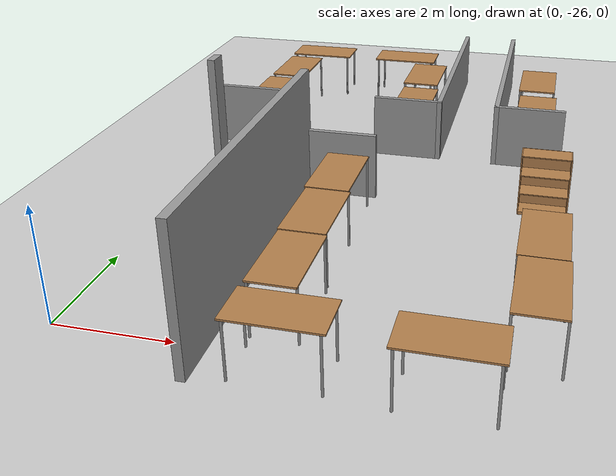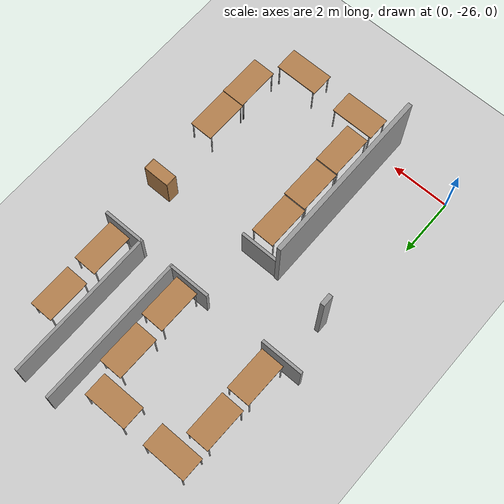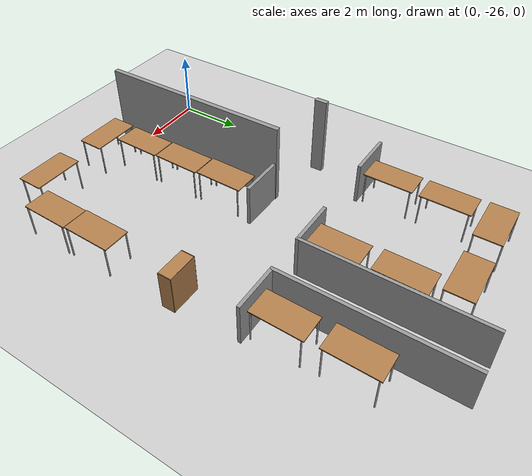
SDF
<sdf version="1.7">
 <world name="default">
  <model name="ground_plane">
   <static>1</static>
   <link name="link">
    <collision name="collision">
     <geometry><plane><normal>0 0 1</normal><size>100 100</size></plane></geometry>
     <surface>
      <contact><collide_bitmask>65535</collide_bitmask></contact>
      <friction><ode><mu>100</mu><mu2>50</mu2></ode></friction>
     </surface>
    </collision>
    <visual name="visual">
     <cast_shadows>0</cast_shadows>
     <geometry><plane><normal>0 0 1</normal><size>100 100</size></plane></geometry>
     <material>
      <script><uri>file://media/materials/scripts/gazebo.material</uri><name>Gazebo/Grey</name></script>
     </material>
    </visual>
   </link>
  </model>
  <model name="XXXXX_office_centered">
   <pose>8.46852 -9.33941 0 0 -0 0</pose>
   <link name="Wall_145">
    <collision name="Wall_145_Collision">
     <geometry><box><size>5.20019 0.1 1.3</size></box></geometry>
     <pose>0 0 0.65 0 -0 0</pose>
    </collision>
    <visual name="Wall_145_Visual">
     <pose>0 0 0.65 0 -0 0</pose>
     <geometry><box><size>5.20019 0.1 1.3</size></box></geometry>
     <material>
      <script><uri>file://media/materials/scripts/gazebo.material</uri><name>Gazebo/Grey</name></script>
      <ambient>1 1 1 1</ambient>
     </material>
     <meta><layer>0</layer></meta>
    </visual>
    <pose>-2.54973 -6.76685 0 0 -0 1.5708</pose>
   </link>
   <link name="Wall_153">
    <collision name="Wall_153_Collision">
     <geometry><box><size>1.4502 0.1 1.3</size></box></geometry>
     <pose>0 0 0.65 0 -0 0</pose>
    </collision>
    <visual name="Wall_153_Visual">
     <pose>0 0 0.65 0 -0 0</pose>
     <geometry><box><size>1.4502 0.1 1.3</size></box></geometry>
     <material>
      <script><uri>file://media/materials/scripts/gazebo.material</uri><name>Gazebo/Grey</name></script>
      <ambient>1 1 1 1</ambient>
     </material>
     <meta><layer>0</layer></meta>
    </visual>
    <pose>-1.87473 -9.31685 0 0 -0 0</pose>
   </link>
   <link name="Wall_166">
    <collision name="Wall_166_Collision">
     <geometry><box><size>5.20019 0.1 1.3</size></box></geometry>
     <pose>0 0 0.65 0 -0 0</pose>
    </collision>
    <visual name="Wall_166_Visual">
     <pose>0 0 0.65 0 -0 0</pose>
     <geometry><box><size>5.20019 0.1 1.3</size></box></geometry>
     <material>
      <script><uri>file://media/materials/scripts/gazebo.material</uri><name>Gazebo/Grey</name></script>
      <ambient>1 1 1 1</ambient>
     </material>
     <meta><layer>0</layer></meta>
    </visual>
    <pose>-3.75173 -6.76685 0 0 -0 1.5708</pose>
   </link>
   <link name="Wall_174">
    <collision name="Wall_174_Collision">
     <geometry><box><size>1.44958 0.1 1.3</size></box></geometry>
     <pose>0 0 0.65 0 -0 0</pose>
    </collision>
    <visual name="Wall_174_Visual">
     <pose>0 0 0.65 0 -0 0</pose>
     <geometry><box><size>1.44958 0.1 1.3</size></box></geometry>
     <material>
      <script><uri>file://media/materials/scripts/gazebo.material</uri><name>Gazebo/Grey</name></script>
      <ambient>1 1 1 1</ambient>
     </material>
     <meta><layer>0</layer></meta>
    </visual>
    <pose>-7.93773 -9.33585 0 0 -0 0</pose>
   </link>
   <link name="Wall_176">
    <collision name="Wall_176_Collision">
     <geometry><box><size>1.45018 0.1 1.3</size></box></geometry>
     <pose>0 0 0.65 0 -0 0</pose>
    </collision>
    <visual name="Wall_176_Visual">
     <pose>0 0 0.65 0 -0 0</pose>
     <geometry><box><size>1.45018 0.1 1.3</size></box></geometry>
     <material>
      <script><uri>file://media/materials/scripts/gazebo.material</uri><name>Gazebo/Grey</name></script>
      <ambient>1 1 1 1</ambient>
     </material>
     <meta><layer>0</layer></meta>
    </visual>
    <pose>-4.42673 -9.31685 0 0 -0 3.14159</pose>
   </link>
   <link name="Wall_183">
    <collision name="Wall_183_Collision">
     <geometry><box><size>1.44998 0.1 1.3</size></box></geometry>
     <pose>0 0 0.65 0 -0 0</pose>
    </collision>
    <visual name="Wall_183_Visual">
     <pose>0 0 0.65 0 -0 0</pose>
     <geometry><box><size>1.44998 0.1 1.3</size></box></geometry>
     <material>
      <script><uri>file://media/materials/scripts/gazebo.material</uri><name>Gazebo/Grey</name></script>
      <ambient>1 1 1 1</ambient>
     </material>
     <meta><layer>0</layer></meta>
    </visual>
    <pose>-5.37673 -11.4379 0 0 -0 0</pose>
   </link>
   <link name="Wall_19">
    <collision name="Wall_19_Collision">
     <geometry><box><size>6.06274 0.15 2.5</size></box></geometry>
     <pose>0 0 1.25 0 -0 0</pose>
    </collision>
    <visual name="Wall_19_Visual">
     <pose>0 0 1.25 0 -0 0</pose>
     <geometry><box><size>6.06274 0.15 2.5</size></box></geometry>
     <material>
      <script><uri>file://media/materials/scripts/gazebo.material</uri><name>Gazebo/Grey</name></script>
      <ambient>1 1 1 1</ambient>
     </material>
     <meta><layer>0</layer></meta>
    </visual>
    <pose>-6.03836 -14.394 0 0 -0 -1.56628</pose>
   </link>
   <link name="Wall_79">
    <collision name="Wall_79_Collision">
     <geometry><box><size>0.381532 0.15 2.5</size></box></geometry>
     <pose>0 0 1.25 0 -0 0</pose>
    </collision>
    <visual name="Wall_79_Visual">
     <pose>0 0 1.25 0 -0 0</pose>
     <geometry><box><size>0.381532 0.15 2.5</size></box></geometry>
     <material>
      <script><uri>file://media/materials/scripts/gazebo.material</uri><name>Gazebo/Grey</name></script>
      <ambient>1 1 1 1</ambient>
     </material>
     <meta><layer>0</layer></meta>
    </visual>
    <pose>-8.00051 -11.085 0 0 -0 -1.55651</pose>
   </link>
   <static>1</static>
  </model>
  <model name="table_4">
   <static>1</static>
   <link name="link">
    <collision name="surface">
     <pose>0 0 1 0 -0 0</pose>
     <geometry><box><size>1.5 0.8 0.03</size></box></geometry>
     <surface><friction><ode><mu>0.6</mu><mu2>0.6</mu2></ode></friction></surface>
    </collision>
    <visual name="visual1">
     <pose>0 0 1 0 -0 0</pose>
     <geometry><box><size>1.5 0.8 0.03</size></box></geometry>
     <material>
      <script><uri>file://media/materials/scripts/gazebo.material</uri><name>Gazebo/Wood</name></script>
     </material>
    </visual>
    <collision name="collision_front_left_leg">
     <pose>0.68 0.38 0.5 0 -0 0</pose>
     <geometry><cylinder><radius>0.02</radius><length>1</length></cylinder></geometry>
    </collision>
    <visual name="visual_front_left_leg">
     <pose>0.68 0.38 0.5 0 -0 0</pose>
     <geometry><cylinder><radius>0.02</radius><length>1</length></cylinder></geometry>
     <material>
      <script><uri>file://media/materials/scripts/gazebo.material</uri><name>Gazebo/Grey</name></script>
     </material>
    </visual>
    <collision name="collision_front_right_leg">
     <pose>0.68 -0.38 0.5 0 -0 0</pose>
     <geometry><cylinder><radius>0.02</radius><length>1</length></cylinder></geometry>
    </collision>
    <visual name="visual_front_right_leg">
     <pose>0.68 -0.38 0.5 0 -0 0</pose>
     <geometry><cylinder><radius>0.02</radius><length>1</length></cylinder></geometry>
     <material>
      <script><uri>file://media/materials/scripts/gazebo.material</uri><name>Gazebo/Grey</name></script>
     </material>
    </visual>
    <collision name="collision_back_right_leg">
     <pose>-0.68 -0.38 0.5 0 -0 0</pose>
     <geometry><cylinder><radius>0.02</radius><length>1</length></cylinder></geometry>
    </collision>
    <visual name="visual_back_right_leg">
     <pose>-0.68 -0.38 0.5 0 -0 0</pose>
     <geometry><cylinder><radius>0.02</radius><length>1</length></cylinder></geometry>
     <material>
      <script><uri>file://media/materials/scripts/gazebo.material</uri><name>Gazebo/Grey</name></script>
     </material>
    </visual>
    <collision name="collision_back_left_leg">
     <pose>-0.68 0.38 0.5 0 -0 0</pose>
     <geometry><cylinder><radius>0.02</radius><length>1</length></cylinder></geometry>
    </collision>
    <visual name="visual_back_left_leg">
     <pose>-0.68 0.38 0.5 0 -0 0</pose>
     <geometry><cylinder><radius>0.02</radius><length>1</length></cylinder></geometry>
     <material>
      <script><uri>file://media/materials/scripts/gazebo.material</uri><name>Gazebo/Grey</name></script>
     </material>
    </visual>
   </link>
   <pose>1.10768 -14.7151 0 0 -0 0</pose>
  </model>
  <model name="table_5">
   <static>1</static>
   <link name="link">
    <collision name="surface">
     <pose>0 0 1 0 -0 0</pose>
     <geometry><box><size>1.5 0.8 0.03</size></box></geometry>
     <surface><friction><ode><mu>0.6</mu><mu2>0.6</mu2></ode></friction></surface>
    </collision>
    <visual name="visual1">
     <pose>0 0 1 0 -0 0</pose>
     <geometry><box><size>1.5 0.8 0.03</size></box></geometry>
     <material>
      <script><uri>file://media/materials/scripts/gazebo.material</uri><name>Gazebo/Wood</name></script>
     </material>
    </visual>
    <collision name="collision_front_left_leg">
     <pose>0.68 0.38 0.5 0 -0 0</pose>
     <geometry><cylinder><radius>0.02</radius><length>1</length></cylinder></geometry>
    </collision>
    <visual name="visual_front_left_leg">
     <pose>0.68 0.38 0.5 0 -0 0</pose>
     <geometry><cylinder><radius>0.02</radius><length>1</length></cylinder></geometry>
     <material>
      <script><uri>file://media/materials/scripts/gazebo.material</uri><name>Gazebo/Grey</name></script>
     </material>
    </visual>
    <collision name="collision_front_right_leg">
     <pose>0.68 -0.38 0.5 0 -0 0</pose>
     <geometry><cylinder><radius>0.02</radius><length>1</length></cylinder></geometry>
    </collision>
    <visual name="visual_front_right_leg">
     <pose>0.68 -0.38 0.5 0 -0 0</pose>
     <geometry><cylinder><radius>0.02</radius><length>1</length></cylinder></geometry>
     <material>
      <script><uri>file://media/materials/scripts/gazebo.material</uri><name>Gazebo/Grey</name></script>
     </material>
    </visual>
    <collision name="collision_back_right_leg">
     <pose>-0.68 -0.38 0.5 0 -0 0</pose>
     <geometry><cylinder><radius>0.02</radius><length>1</length></cylinder></geometry>
    </collision>
    <visual name="visual_back_right_leg">
     <pose>-0.68 -0.38 0.5 0 -0 0</pose>
     <geometry><cylinder><radius>0.02</radius><length>1</length></cylinder></geometry>
     <material>
      <script><uri>file://media/materials/scripts/gazebo.material</uri><name>Gazebo/Grey</name></script>
     </material>
    </visual>
    <collision name="collision_back_left_leg">
     <pose>-0.68 0.38 0.5 0 -0 0</pose>
     <geometry><cylinder><radius>0.02</radius><length>1</length></cylinder></geometry>
    </collision>
    <visual name="visual_back_left_leg">
     <pose>-0.68 0.38 0.5 0 -0 0</pose>
     <geometry><cylinder><radius>0.02</radius><length>1</length></cylinder></geometry>
     <material>
      <script><uri>file://media/materials/scripts/gazebo.material</uri><name>Gazebo/Grey</name></script>
     </material>
    </visual>
   </link>
   <pose>3.29963 -14.6952 0 0 -0 0</pose>
  </model>
  <model name="table_12">
   <static>1</static>
   <link name="link">
    <collision name="surface">
     <pose>0 0 1 0 -0 0</pose>
     <geometry><box><size>1.5 0.8 0.03</size></box></geometry>
     <surface><friction><ode><mu>0.6</mu><mu2>0.6</mu2></ode></friction></surface>
    </collision>
    <visual name="visual1">
     <pose>0 0 1 0 -0 0</pose>
     <geometry><box><size>1.5 0.8 0.03</size></box></geometry>
     <material>
      <script><uri>file://media/materials/scripts/gazebo.material</uri><name>Gazebo/Wood</name></script>
     </material>
    </visual>
    <collision name="collision_front_left_leg">
     <pose>0.68 0.38 0.5 0 -0 0</pose>
     <geometry><cylinder><radius>0.02</radius><length>1</length></cylinder></geometry>
    </collision>
    <visual name="visual_front_left_leg">
     <pose>0.68 0.38 0.5 0 -0 0</pose>
     <geometry><cylinder><radius>0.02</radius><length>1</length></cylinder></geometry>
     <material>
      <script><uri>file://media/materials/scripts/gazebo.material</uri><name>Gazebo/Grey</name></script>
     </material>
    </visual>
    <collision name="collision_front_right_leg">
     <pose>0.68 -0.38 0.5 0 -0 0</pose>
     <geometry><cylinder><radius>0.02</radius><length>1</length></cylinder></geometry>
    </collision>
    <visual name="visual_front_right_leg">
     <pose>0.68 -0.38 0.5 0 -0 0</pose>
     <geometry><cylinder><radius>0.02</radius><length>1</length></cylinder></geometry>
     <material>
      <script><uri>file://media/materials/scripts/gazebo.material</uri><name>Gazebo/Grey</name></script>
     </material>
    </visual>
    <collision name="collision_back_right_leg">
     <pose>-0.68 -0.38 0.5 0 -0 0</pose>
     <geometry><cylinder><radius>0.02</radius><length>1</length></cylinder></geometry>
    </collision>
    <visual name="visual_back_right_leg">
     <pose>-0.68 -0.38 0.5 0 -0 0</pose>
     <geometry><cylinder><radius>0.02</radius><length>1</length></cylinder></geometry>
     <material>
      <script><uri>file://media/materials/scripts/gazebo.material</uri><name>Gazebo/Grey</name></script>
     </material>
    </visual>
    <collision name="collision_back_left_leg">
     <pose>-0.68 0.38 0.5 0 -0 0</pose>
     <geometry><cylinder><radius>0.02</radius><length>1</length></cylinder></geometry>
    </collision>
    <visual name="visual_back_left_leg">
     <pose>-0.68 0.38 0.5 0 -0 0</pose>
     <geometry><cylinder><radius>0.02</radius><length>1</length></cylinder></geometry>
     <material>
      <script><uri>file://media/materials/scripts/gazebo.material</uri><name>Gazebo/Grey</name></script>
     </material>
    </visual>
   </link>
   <pose>3.71612 -26.2266 0 0 -0 0</pose>
  </model>
  <model name="table_13">
   <static>1</static>
   <link name="link">
    <collision name="surface">
     <pose>0 0 1 0 -0 0</pose>
     <geometry><box><size>1.5 0.8 0.03</size></box></geometry>
     <surface><friction><ode><mu>0.6</mu><mu2>0.6</mu2></ode></friction></surface>
    </collision>
    <visual name="visual1">
     <pose>0 0 1 0 -0 0</pose>
     <geometry><box><size>1.5 0.8 0.03</size></box></geometry>
     <material>
      <script><uri>file://media/materials/scripts/gazebo.material</uri><name>Gazebo/Wood</name></script>
     </material>
    </visual>
    <collision name="collision_front_left_leg">
     <pose>0.68 0.38 0.5 0 -0 0</pose>
     <geometry><cylinder><radius>0.02</radius><length>1</length></cylinder></geometry>
    </collision>
    <visual name="visual_front_left_leg">
     <pose>0.68 0.38 0.5 0 -0 0</pose>
     <geometry><cylinder><radius>0.02</radius><length>1</length></cylinder></geometry>
     <material>
      <script><uri>file://media/materials/scripts/gazebo.material</uri><name>Gazebo/Grey</name></script>
     </material>
    </visual>
    <collision name="collision_front_right_leg">
     <pose>0.68 -0.38 0.5 0 -0 0</pose>
     <geometry><cylinder><radius>0.02</radius><length>1</length></cylinder></geometry>
    </collision>
    <visual name="visual_front_right_leg">
     <pose>0.68 -0.38 0.5 0 -0 0</pose>
     <geometry><cylinder><radius>0.02</radius><length>1</length></cylinder></geometry>
     <material>
      <script><uri>file://media/materials/scripts/gazebo.material</uri><name>Gazebo/Grey</name></script>
     </material>
    </visual>
    <collision name="collision_back_right_leg">
     <pose>-0.68 -0.38 0.5 0 -0 0</pose>
     <geometry><cylinder><radius>0.02</radius><length>1</length></cylinder></geometry>
    </collision>
    <visual name="visual_back_right_leg">
     <pose>-0.68 -0.38 0.5 0 -0 0</pose>
     <geometry><cylinder><radius>0.02</radius><length>1</length></cylinder></geometry>
     <material>
      <script><uri>file://media/materials/scripts/gazebo.material</uri><name>Gazebo/Grey</name></script>
     </material>
    </visual>
    <collision name="collision_back_left_leg">
     <pose>-0.68 0.38 0.5 0 -0 0</pose>
     <geometry><cylinder><radius>0.02</radius><length>1</length></cylinder></geometry>
    </collision>
    <visual name="visual_back_left_leg">
     <pose>-0.68 0.38 0.5 0 -0 0</pose>
     <geometry><cylinder><radius>0.02</radius><length>1</length></cylinder></geometry>
     <material>
      <script><uri>file://media/materials/scripts/gazebo.material</uri><name>Gazebo/Grey</name></script>
     </material>
    </visual>
   </link>
   <pose>6.01356 -26.2944 0 0 -0 0</pose>
  </model>
  <model name="table_26_clone_16">
   <static>1</static>
   <link name="link">
    <collision name="surface">
     <pose>0 0 1 0 -0 0</pose>
     <geometry><box><size>1.5 0.8 0.03</size></box></geometry>
     <surface><friction><ode><mu>0.6</mu><mu2>0.6</mu2></ode></friction></surface>
    </collision>
    <visual name="visual1">
     <pose>0 0 1 0 -0 0</pose>
     <geometry><box><size>1.5 0.8 0.03</size></box></geometry>
     <material>
      <script><uri>file://media/materials/scripts/gazebo.material</uri><name>Gazebo/Wood</name></script>
     </material>
    </visual>
    <collision name="collision_front_left_leg">
     <pose>0.68 0.38 0.5 0 -0 0</pose>
     <geometry><cylinder><radius>0.02</radius><length>1</length></cylinder></geometry>
    </collision>
    <visual name="visual_front_left_leg">
     <pose>0.68 0.38 0.5 0 -0 0</pose>
     <geometry><cylinder><radius>0.02</radius><length>1</length></cylinder></geometry>
     <material>
      <script><uri>file://media/materials/scripts/gazebo.material</uri><name>Gazebo/Grey</name></script>
     </material>
    </visual>
    <collision name="collision_front_right_leg">
     <pose>0.68 -0.38 0.5 0 -0 0</pose>
     <geometry><cylinder><radius>0.02</radius><length>1</length></cylinder></geometry>
    </collision>
    <visual name="visual_front_right_leg">
     <pose>0.68 -0.38 0.5 0 -0 0</pose>
     <geometry><cylinder><radius>0.02</radius><length>1</length></cylinder></geometry>
     <material>
      <script><uri>file://media/materials/scripts/gazebo.material</uri><name>Gazebo/Grey</name></script>
     </material>
    </visual>
    <collision name="collision_back_right_leg">
     <pose>-0.68 -0.38 0.5 0 -0 0</pose>
     <geometry><cylinder><radius>0.02</radius><length>1</length></cylinder></geometry>
    </collision>
    <visual name="visual_back_right_leg">
     <pose>-0.68 -0.38 0.5 0 -0 0</pose>
     <geometry><cylinder><radius>0.02</radius><length>1</length></cylinder></geometry>
     <material>
      <script><uri>file://media/materials/scripts/gazebo.material</uri><name>Gazebo/Grey</name></script>
     </material>
    </visual>
    <collision name="collision_back_left_leg">
     <pose>-0.68 0.38 0.5 0 -0 0</pose>
     <geometry><cylinder><radius>0.02</radius><length>1</length></cylinder></geometry>
    </collision>
    <visual name="visual_back_left_leg">
     <pose>-0.68 0.38 0.5 0 -0 0</pose>
     <geometry><cylinder><radius>0.02</radius><length>1</length></cylinder></geometry>
     <material>
      <script><uri>file://media/materials/scripts/gazebo.material</uri><name>Gazebo/Grey</name></script>
     </material>
    </visual>
   </link>
   <pose>6.68534 -15.96 0 0 0 -1.57974</pose>
  </model>
  <model name="table_26_clone_17">
   <static>1</static>
   <link name="link">
    <collision name="surface">
     <pose>0 0 1 0 -0 0</pose>
     <geometry><box><size>1.5 0.8 0.03</size></box></geometry>
     <surface><friction><ode><mu>0.6</mu><mu2>0.6</mu2></ode></friction></surface>
    </collision>
    <visual name="visual1">
     <pose>0 0 1 0 -0 0</pose>
     <geometry><box><size>1.5 0.8 0.03</size></box></geometry>
     <material>
      <script><uri>file://media/materials/scripts/gazebo.material</uri><name>Gazebo/Wood</name></script>
     </material>
    </visual>
    <collision name="collision_front_left_leg">
     <pose>0.68 0.38 0.5 0 -0 0</pose>
     <geometry><cylinder><radius>0.02</radius><length>1</length></cylinder></geometry>
    </collision>
    <visual name="visual_front_left_leg">
     <pose>0.68 0.38 0.5 0 -0 0</pose>
     <geometry><cylinder><radius>0.02</radius><length>1</length></cylinder></geometry>
     <material>
      <script><uri>file://media/materials/scripts/gazebo.material</uri><name>Gazebo/Grey</name></script>
     </material>
    </visual>
    <collision name="collision_front_right_leg">
     <pose>0.68 -0.38 0.5 0 -0 0</pose>
     <geometry><cylinder><radius>0.02</radius><length>1</length></cylinder></geometry>
    </collision>
    <visual name="visual_front_right_leg">
     <pose>0.68 -0.38 0.5 0 -0 0</pose>
     <geometry><cylinder><radius>0.02</radius><length>1</length></cylinder></geometry>
     <material>
      <script><uri>file://media/materials/scripts/gazebo.material</uri><name>Gazebo/Grey</name></script>
     </material>
    </visual>
    <collision name="collision_back_right_leg">
     <pose>-0.68 -0.38 0.5 0 -0 0</pose>
     <geometry><cylinder><radius>0.02</radius><length>1</length></cylinder></geometry>
    </collision>
    <visual name="visual_back_right_leg">
     <pose>-0.68 -0.38 0.5 0 -0 0</pose>
     <geometry><cylinder><radius>0.02</radius><length>1</length></cylinder></geometry>
     <material>
      <script><uri>file://media/materials/scripts/gazebo.material</uri><name>Gazebo/Grey</name></script>
     </material>
    </visual>
    <collision name="collision_back_left_leg">
     <pose>-0.68 0.38 0.5 0 -0 0</pose>
     <geometry><cylinder><radius>0.02</radius><length>1</length></cylinder></geometry>
    </collision>
    <visual name="visual_back_left_leg">
     <pose>-0.68 0.38 0.5 0 -0 0</pose>
     <geometry><cylinder><radius>0.02</radius><length>1</length></cylinder></geometry>
     <material>
      <script><uri>file://media/materials/scripts/gazebo.material</uri><name>Gazebo/Grey</name></script>
     </material>
    </visual>
   </link>
   <pose>6.71927 -17.8047 0 0 0 -1.57974</pose>
  </model>
  <model name="table_26_clone_18">
   <static>1</static>
   <link name="link">
    <collision name="surface">
     <pose>0 0 1 0 -0 0</pose>
     <geometry><box><size>1.5 0.8 0.03</size></box></geometry>
     <surface><friction><ode><mu>0.6</mu><mu2>0.6</mu2></ode></friction></surface>
    </collision>
    <visual name="visual1">
     <pose>0 0 1 0 -0 0</pose>
     <geometry><box><size>1.5 0.8 0.03</size></box></geometry>
     <material>
      <script><uri>file://media/materials/scripts/gazebo.material</uri><name>Gazebo/Wood</name></script>
     </material>
    </visual>
    <collision name="collision_front_left_leg">
     <pose>0.68 0.38 0.5 0 -0 0</pose>
     <geometry><cylinder><radius>0.02</radius><length>1</length></cylinder></geometry>
    </collision>
    <visual name="visual_front_left_leg">
     <pose>0.68 0.38 0.5 0 -0 0</pose>
     <geometry><cylinder><radius>0.02</radius><length>1</length></cylinder></geometry>
     <material>
      <script><uri>file://media/materials/scripts/gazebo.material</uri><name>Gazebo/Grey</name></script>
     </material>
    </visual>
    <collision name="collision_front_right_leg">
     <pose>0.68 -0.38 0.5 0 -0 0</pose>
     <geometry><cylinder><radius>0.02</radius><length>1</length></cylinder></geometry>
    </collision>
    <visual name="visual_front_right_leg">
     <pose>0.68 -0.38 0.5 0 -0 0</pose>
     <geometry><cylinder><radius>0.02</radius><length>1</length></cylinder></geometry>
     <material>
      <script><uri>file://media/materials/scripts/gazebo.material</uri><name>Gazebo/Grey</name></script>
     </material>
    </visual>
    <collision name="collision_back_right_leg">
     <pose>-0.68 -0.38 0.5 0 -0 0</pose>
     <geometry><cylinder><radius>0.02</radius><length>1</length></cylinder></geometry>
    </collision>
    <visual name="visual_back_right_leg">
     <pose>-0.68 -0.38 0.5 0 -0 0</pose>
     <geometry><cylinder><radius>0.02</radius><length>1</length></cylinder></geometry>
     <material>
      <script><uri>file://media/materials/scripts/gazebo.material</uri><name>Gazebo/Grey</name></script>
     </material>
    </visual>
    <collision name="collision_back_left_leg">
     <pose>-0.68 0.38 0.5 0 -0 0</pose>
     <geometry><cylinder><radius>0.02</radius><length>1</length></cylinder></geometry>
    </collision>
    <visual name="visual_back_left_leg">
     <pose>-0.68 0.38 0.5 0 -0 0</pose>
     <geometry><cylinder><radius>0.02</radius><length>1</length></cylinder></geometry>
     <material>
      <script><uri>file://media/materials/scripts/gazebo.material</uri><name>Gazebo/Grey</name></script>
     </material>
    </visual>
   </link>
   <pose>4.05406 -17.8198 0 0 0 -1.57974</pose>
  </model>
  <model name="table_26_clone_19">
   <static>1</static>
   <link name="link">
    <collision name="surface">
     <pose>0 0 1 0 -0 0</pose>
     <geometry><box><size>1.5 0.8 0.03</size></box></geometry>
     <surface><friction><ode><mu>0.6</mu><mu2>0.6</mu2></ode></friction></surface>
    </collision>
    <visual name="visual1">
     <pose>0 0 1 0 -0 0</pose>
     <geometry><box><size>1.5 0.8 0.03</size></box></geometry>
     <material>
      <script><uri>file://media/materials/scripts/gazebo.material</uri><name>Gazebo/Wood</name></script>
     </material>
    </visual>
    <collision name="collision_front_left_leg">
     <pose>0.68 0.38 0.5 0 -0 0</pose>
     <geometry><cylinder><radius>0.02</radius><length>1</length></cylinder></geometry>
    </collision>
    <visual name="visual_front_left_leg">
     <pose>0.68 0.38 0.5 0 -0 0</pose>
     <geometry><cylinder><radius>0.02</radius><length>1</length></cylinder></geometry>
     <material>
      <script><uri>file://media/materials/scripts/gazebo.material</uri><name>Gazebo/Grey</name></script>
     </material>
    </visual>
    <collision name="collision_front_right_leg">
     <pose>0.68 -0.38 0.5 0 -0 0</pose>
     <geometry><cylinder><radius>0.02</radius><length>1</length></cylinder></geometry>
    </collision>
    <visual name="visual_front_right_leg">
     <pose>0.68 -0.38 0.5 0 -0 0</pose>
     <geometry><cylinder><radius>0.02</radius><length>1</length></cylinder></geometry>
     <material>
      <script><uri>file://media/materials/scripts/gazebo.material</uri><name>Gazebo/Grey</name></script>
     </material>
    </visual>
    <collision name="collision_back_right_leg">
     <pose>-0.68 -0.38 0.5 0 -0 0</pose>
     <geometry><cylinder><radius>0.02</radius><length>1</length></cylinder></geometry>
    </collision>
    <visual name="visual_back_right_leg">
     <pose>-0.68 -0.38 0.5 0 -0 0</pose>
     <geometry><cylinder><radius>0.02</radius><length>1</length></cylinder></geometry>
     <material>
      <script><uri>file://media/materials/scripts/gazebo.material</uri><name>Gazebo/Grey</name></script>
     </material>
    </visual>
    <collision name="collision_back_left_leg">
     <pose>-0.68 0.38 0.5 0 -0 0</pose>
     <geometry><cylinder><radius>0.02</radius><length>1</length></cylinder></geometry>
    </collision>
    <visual name="visual_back_left_leg">
     <pose>-0.68 0.38 0.5 0 -0 0</pose>
     <geometry><cylinder><radius>0.02</radius><length>1</length></cylinder></geometry>
     <material>
      <script><uri>file://media/materials/scripts/gazebo.material</uri><name>Gazebo/Grey</name></script>
     </material>
    </visual>
   </link>
   <pose>4.0033 -16.0331 0 0 0 -1.57974</pose>
  </model>
  <model name="table_26_clone_20">
   <static>1</static>
   <link name="link">
    <collision name="surface">
     <pose>0 0 1 0 -0 0</pose>
     <geometry><box><size>1.5 0.8 0.03</size></box></geometry>
     <surface><friction><ode><mu>0.6</mu><mu2>0.6</mu2></ode></friction></surface>
    </collision>
    <visual name="visual1">
     <pose>0 0 1 0 -0 0</pose>
     <geometry><box><size>1.5 0.8 0.03</size></box></geometry>
     <material>
      <script><uri>file://media/materials/scripts/gazebo.material</uri><name>Gazebo/Wood</name></script>
     </material>
    </visual>
    <collision name="collision_front_left_leg">
     <pose>0.68 0.38 0.5 0 -0 0</pose>
     <geometry><cylinder><radius>0.02</radius><length>1</length></cylinder></geometry>
    </collision>
    <visual name="visual_front_left_leg">
     <pose>0.68 0.38 0.5 0 -0 0</pose>
     <geometry><cylinder><radius>0.02</radius><length>1</length></cylinder></geometry>
     <material>
      <script><uri>file://media/materials/scripts/gazebo.material</uri><name>Gazebo/Grey</name></script>
     </material>
    </visual>
    <collision name="collision_front_right_leg">
     <pose>0.68 -0.38 0.5 0 -0 0</pose>
     <geometry><cylinder><radius>0.02</radius><length>1</length></cylinder></geometry>
    </collision>
    <visual name="visual_front_right_leg">
     <pose>0.68 -0.38 0.5 0 -0 0</pose>
     <geometry><cylinder><radius>0.02</radius><length>1</length></cylinder></geometry>
     <material>
      <script><uri>file://media/materials/scripts/gazebo.material</uri><name>Gazebo/Grey</name></script>
     </material>
    </visual>
    <collision name="collision_back_right_leg">
     <pose>-0.68 -0.38 0.5 0 -0 0</pose>
     <geometry><cylinder><radius>0.02</radius><length>1</length></cylinder></geometry>
    </collision>
    <visual name="visual_back_right_leg">
     <pose>-0.68 -0.38 0.5 0 -0 0</pose>
     <geometry><cylinder><radius>0.02</radius><length>1</length></cylinder></geometry>
     <material>
      <script><uri>file://media/materials/scripts/gazebo.material</uri><name>Gazebo/Grey</name></script>
     </material>
    </visual>
    <collision name="collision_back_left_leg">
     <pose>-0.68 0.38 0.5 0 -0 0</pose>
     <geometry><cylinder><radius>0.02</radius><length>1</length></cylinder></geometry>
    </collision>
    <visual name="visual_back_left_leg">
     <pose>-0.68 0.38 0.5 0 -0 0</pose>
     <geometry><cylinder><radius>0.02</radius><length>1</length></cylinder></geometry>
     <material>
      <script><uri>file://media/materials/scripts/gazebo.material</uri><name>Gazebo/Grey</name></script>
     </material>
    </visual>
   </link>
   <pose>0.785889 -16.1027 0 0 0 -1.57974</pose>
  </model>
  <model name="table_26_clone_21">
   <static>1</static>
   <link name="link">
    <collision name="surface">
     <pose>0 0 1 0 -0 0</pose>
     <geometry><box><size>1.5 0.8 0.03</size></box></geometry>
     <surface><friction><ode><mu>0.6</mu><mu2>0.6</mu2></ode></friction></surface>
    </collision>
    <visual name="visual1">
     <pose>0 0 1 0 -0 0</pose>
     <geometry><box><size>1.5 0.8 0.03</size></box></geometry>
     <material>
      <script><uri>file://media/materials/scripts/gazebo.material</uri><name>Gazebo/Wood</name></script>
     </material>
    </visual>
    <collision name="collision_front_left_leg">
     <pose>0.68 0.38 0.5 0 -0 0</pose>
     <geometry><cylinder><radius>0.02</radius><length>1</length></cylinder></geometry>
    </collision>
    <visual name="visual_front_left_leg">
     <pose>0.68 0.38 0.5 0 -0 0</pose>
     <geometry><cylinder><radius>0.02</radius><length>1</length></cylinder></geometry>
     <material>
      <script><uri>file://media/materials/scripts/gazebo.material</uri><name>Gazebo/Grey</name></script>
     </material>
    </visual>
    <collision name="collision_front_right_leg">
     <pose>0.68 -0.38 0.5 0 -0 0</pose>
     <geometry><cylinder><radius>0.02</radius><length>1</length></cylinder></geometry>
    </collision>
    <visual name="visual_front_right_leg">
     <pose>0.68 -0.38 0.5 0 -0 0</pose>
     <geometry><cylinder><radius>0.02</radius><length>1</length></cylinder></geometry>
     <material>
      <script><uri>file://media/materials/scripts/gazebo.material</uri><name>Gazebo/Grey</name></script>
     </material>
    </visual>
    <collision name="collision_back_right_leg">
     <pose>-0.68 -0.38 0.5 0 -0 0</pose>
     <geometry><cylinder><radius>0.02</radius><length>1</length></cylinder></geometry>
    </collision>
    <visual name="visual_back_right_leg">
     <pose>-0.68 -0.38 0.5 0 -0 0</pose>
     <geometry><cylinder><radius>0.02</radius><length>1</length></cylinder></geometry>
     <material>
      <script><uri>file://media/materials/scripts/gazebo.material</uri><name>Gazebo/Grey</name></script>
     </material>
    </visual>
    <collision name="collision_back_left_leg">
     <pose>-0.68 0.38 0.5 0 -0 0</pose>
     <geometry><cylinder><radius>0.02</radius><length>1</length></cylinder></geometry>
    </collision>
    <visual name="visual_back_left_leg">
     <pose>-0.68 0.38 0.5 0 -0 0</pose>
     <geometry><cylinder><radius>0.02</radius><length>1</length></cylinder></geometry>
     <material>
      <script><uri>file://media/materials/scripts/gazebo.material</uri><name>Gazebo/Grey</name></script>
     </material>
    </visual>
   </link>
   <pose>0.765195 -17.7967 0 0 0 -1.57974</pose>
  </model>
  <model name="table_26_clone_26">
   <static>1</static>
   <link name="link">
    <collision name="surface">
     <pose>0 0 1 0 -0 0</pose>
     <geometry><box><size>1.5 0.8 0.03</size></box></geometry>
     <surface><friction><ode><mu>0.6</mu><mu2>0.6</mu2></ode></friction></surface>
    </collision>
    <visual name="visual1">
     <pose>0 0 1 0 -0 0</pose>
     <geometry><box><size>1.5 0.8 0.03</size></box></geometry>
     <material>
      <script><uri>file://media/materials/scripts/gazebo.material</uri><name>Gazebo/Wood</name></script>
     </material>
    </visual>
    <collision name="collision_front_left_leg">
     <pose>0.68 0.38 0.5 0 -0 0</pose>
     <geometry><cylinder><radius>0.02</radius><length>1</length></cylinder></geometry>
    </collision>
    <visual name="visual_front_left_leg">
     <pose>0.68 0.38 0.5 0 -0 0</pose>
     <geometry><cylinder><radius>0.02</radius><length>1</length></cylinder></geometry>
     <material>
      <script><uri>file://media/materials/scripts/gazebo.material</uri><name>Gazebo/Grey</name></script>
     </material>
    </visual>
    <collision name="collision_front_right_leg">
     <pose>0.68 -0.38 0.5 0 -0 0</pose>
     <geometry><cylinder><radius>0.02</radius><length>1</length></cylinder></geometry>
    </collision>
    <visual name="visual_front_right_leg">
     <pose>0.68 -0.38 0.5 0 -0 0</pose>
     <geometry><cylinder><radius>0.02</radius><length>1</length></cylinder></geometry>
     <material>
      <script><uri>file://media/materials/scripts/gazebo.material</uri><name>Gazebo/Grey</name></script>
     </material>
    </visual>
    <collision name="collision_back_right_leg">
     <pose>-0.68 -0.38 0.5 0 -0 0</pose>
     <geometry><cylinder><radius>0.02</radius><length>1</length></cylinder></geometry>
    </collision>
    <visual name="visual_back_right_leg">
     <pose>-0.68 -0.38 0.5 0 -0 0</pose>
     <geometry><cylinder><radius>0.02</radius><length>1</length></cylinder></geometry>
     <material>
      <script><uri>file://media/materials/scripts/gazebo.material</uri><name>Gazebo/Grey</name></script>
     </material>
    </visual>
    <collision name="collision_back_left_leg">
     <pose>-0.68 0.38 0.5 0 -0 0</pose>
     <geometry><cylinder><radius>0.02</radius><length>1</length></cylinder></geometry>
    </collision>
    <visual name="visual_back_left_leg">
     <pose>-0.68 0.38 0.5 0 -0 0</pose>
     <geometry><cylinder><radius>0.02</radius><length>1</length></cylinder></geometry>
     <material>
      <script><uri>file://media/materials/scripts/gazebo.material</uri><name>Gazebo/Grey</name></script>
     </material>
    </visual>
   </link>
   <pose>3.39464 -24.9426 0 0 0 -1.57974</pose>
  </model>
  <model name="table_26_clone_27">
   <static>1</static>
   <link name="link">
    <collision name="surface">
     <pose>0 0 1 0 -0 0</pose>
     <geometry><box><size>1.5 0.8 0.03</size></box></geometry>
     <surface><friction><ode><mu>0.6</mu><mu2>0.6</mu2></ode></friction></surface>
    </collision>
    <visual name="visual1">
     <pose>0 0 1 0 -0 0</pose>
     <geometry><box><size>1.5 0.8 0.03</size></box></geometry>
     <material>
      <script><uri>file://media/materials/scripts/gazebo.material</uri><name>Gazebo/Wood</name></script>
     </material>
    </visual>
    <collision name="collision_front_left_leg">
     <pose>0.68 0.38 0.5 0 -0 0</pose>
     <geometry><cylinder><radius>0.02</radius><length>1</length></cylinder></geometry>
    </collision>
    <visual name="visual_front_left_leg">
     <pose>0.68 0.38 0.5 0 -0 0</pose>
     <geometry><cylinder><radius>0.02</radius><length>1</length></cylinder></geometry>
     <material>
      <script><uri>file://media/materials/scripts/gazebo.material</uri><name>Gazebo/Grey</name></script>
     </material>
    </visual>
    <collision name="collision_front_right_leg">
     <pose>0.68 -0.38 0.5 0 -0 0</pose>
     <geometry><cylinder><radius>0.02</radius><length>1</length></cylinder></geometry>
    </collision>
    <visual name="visual_front_right_leg">
     <pose>0.68 -0.38 0.5 0 -0 0</pose>
     <geometry><cylinder><radius>0.02</radius><length>1</length></cylinder></geometry>
     <material>
      <script><uri>file://media/materials/scripts/gazebo.material</uri><name>Gazebo/Grey</name></script>
     </material>
    </visual>
    <collision name="collision_back_right_leg">
     <pose>-0.68 -0.38 0.5 0 -0 0</pose>
     <geometry><cylinder><radius>0.02</radius><length>1</length></cylinder></geometry>
    </collision>
    <visual name="visual_back_right_leg">
     <pose>-0.68 -0.38 0.5 0 -0 0</pose>
     <geometry><cylinder><radius>0.02</radius><length>1</length></cylinder></geometry>
     <material>
      <script><uri>file://media/materials/scripts/gazebo.material</uri><name>Gazebo/Grey</name></script>
     </material>
    </visual>
    <collision name="collision_back_left_leg">
     <pose>-0.68 0.38 0.5 0 -0 0</pose>
     <geometry><cylinder><radius>0.02</radius><length>1</length></cylinder></geometry>
    </collision>
    <visual name="visual_back_left_leg">
     <pose>-0.68 0.38 0.5 0 -0 0</pose>
     <geometry><cylinder><radius>0.02</radius><length>1</length></cylinder></geometry>
     <material>
      <script><uri>file://media/materials/scripts/gazebo.material</uri><name>Gazebo/Grey</name></script>
     </material>
    </visual>
   </link>
   <pose>3.38039 -23.4145 0 0 0 -1.57974</pose>
  </model>
  <model name="table_26_clone_28">
   <static>1</static>
   <link name="link">
    <collision name="surface">
     <pose>0 0 1 0 -0 0</pose>
     <geometry><box><size>1.5 0.8 0.03</size></box></geometry>
     <surface><friction><ode><mu>0.6</mu><mu2>0.6</mu2></ode></friction></surface>
    </collision>
    <visual name="visual1">
     <pose>0 0 1 0 -0 0</pose>
     <geometry><box><size>1.5 0.8 0.03</size></box></geometry>
     <material>
      <script><uri>file://media/materials/scripts/gazebo.material</uri><name>Gazebo/Wood</name></script>
     </material>
    </visual>
    <collision name="collision_front_left_leg">
     <pose>0.68 0.38 0.5 0 -0 0</pose>
     <geometry><cylinder><radius>0.02</radius><length>1</length></cylinder></geometry>
    </collision>
    <visual name="visual_front_left_leg">
     <pose>0.68 0.38 0.5 0 -0 0</pose>
     <geometry><cylinder><radius>0.02</radius><length>1</length></cylinder></geometry>
     <material>
      <script><uri>file://media/materials/scripts/gazebo.material</uri><name>Gazebo/Grey</name></script>
     </material>
    </visual>
    <collision name="collision_front_right_leg">
     <pose>0.68 -0.38 0.5 0 -0 0</pose>
     <geometry><cylinder><radius>0.02</radius><length>1</length></cylinder></geometry>
    </collision>
    <visual name="visual_front_right_leg">
     <pose>0.68 -0.38 0.5 0 -0 0</pose>
     <geometry><cylinder><radius>0.02</radius><length>1</length></cylinder></geometry>
     <material>
      <script><uri>file://media/materials/scripts/gazebo.material</uri><name>Gazebo/Grey</name></script>
     </material>
    </visual>
    <collision name="collision_back_right_leg">
     <pose>-0.68 -0.38 0.5 0 -0 0</pose>
     <geometry><cylinder><radius>0.02</radius><length>1</length></cylinder></geometry>
    </collision>
    <visual name="visual_back_right_leg">
     <pose>-0.68 -0.38 0.5 0 -0 0</pose>
     <geometry><cylinder><radius>0.02</radius><length>1</length></cylinder></geometry>
     <material>
      <script><uri>file://media/materials/scripts/gazebo.material</uri><name>Gazebo/Grey</name></script>
     </material>
    </visual>
    <collision name="collision_back_left_leg">
     <pose>-0.68 0.38 0.5 0 -0 0</pose>
     <geometry><cylinder><radius>0.02</radius><length>1</length></cylinder></geometry>
    </collision>
    <visual name="visual_back_left_leg">
     <pose>-0.68 0.38 0.5 0 -0 0</pose>
     <geometry><cylinder><radius>0.02</radius><length>1</length></cylinder></geometry>
     <material>
      <script><uri>file://media/materials/scripts/gazebo.material</uri><name>Gazebo/Grey</name></script>
     </material>
    </visual>
   </link>
   <pose>3.35083 -21.8848 0 0 0 -1.57974</pose>
  </model>
  <model name="table_26_clone_30">
   <static>1</static>
   <link name="link">
    <collision name="surface">
     <pose>0 0 1 0 -0 0</pose>
     <geometry><box><size>1.5 0.8 0.03</size></box></geometry>
     <surface><friction><ode><mu>0.6</mu><mu2>0.6</mu2></ode></friction></surface>
    </collision>
    <visual name="visual1">
     <pose>0 0 1 0 -0 0</pose>
     <geometry><box><size>1.5 0.8 0.03</size></box></geometry>
     <material>
      <script><uri>file://media/materials/scripts/gazebo.material</uri><name>Gazebo/Wood</name></script>
     </material>
    </visual>
    <collision name="collision_front_left_leg">
     <pose>0.68 0.38 0.5 0 -0 0</pose>
     <geometry><cylinder><radius>0.02</radius><length>1</length></cylinder></geometry>
    </collision>
    <visual name="visual_front_left_leg">
     <pose>0.68 0.38 0.5 0 -0 0</pose>
     <geometry><cylinder><radius>0.02</radius><length>1</length></cylinder></geometry>
     <material>
      <script><uri>file://media/materials/scripts/gazebo.material</uri><name>Gazebo/Grey</name></script>
     </material>
    </visual>
    <collision name="collision_front_right_leg">
     <pose>0.68 -0.38 0.5 0 -0 0</pose>
     <geometry><cylinder><radius>0.02</radius><length>1</length></cylinder></geometry>
    </collision>
    <visual name="visual_front_right_leg">
     <pose>0.68 -0.38 0.5 0 -0 0</pose>
     <geometry><cylinder><radius>0.02</radius><length>1</length></cylinder></geometry>
     <material>
      <script><uri>file://media/materials/scripts/gazebo.material</uri><name>Gazebo/Grey</name></script>
     </material>
    </visual>
    <collision name="collision_back_right_leg">
     <pose>-0.68 -0.38 0.5 0 -0 0</pose>
     <geometry><cylinder><radius>0.02</radius><length>1</length></cylinder></geometry>
    </collision>
    <visual name="visual_back_right_leg">
     <pose>-0.68 -0.38 0.5 0 -0 0</pose>
     <geometry><cylinder><radius>0.02</radius><length>1</length></cylinder></geometry>
     <material>
      <script><uri>file://media/materials/scripts/gazebo.material</uri><name>Gazebo/Grey</name></script>
     </material>
    </visual>
    <collision name="collision_back_left_leg">
     <pose>-0.68 0.38 0.5 0 -0 0</pose>
     <geometry><cylinder><radius>0.02</radius><length>1</length></cylinder></geometry>
    </collision>
    <visual name="visual_back_left_leg">
     <pose>-0.68 0.38 0.5 0 -0 0</pose>
     <geometry><cylinder><radius>0.02</radius><length>1</length></cylinder></geometry>
     <material>
      <script><uri>file://media/materials/scripts/gazebo.material</uri><name>Gazebo/Grey</name></script>
     </material>
    </visual>
   </link>
   <pose>7.08354 -23.3452 0 0 0 -1.57974</pose>
  </model>
  <model name="table_26_clone_31">
   <static>1</static>
   <link name="link">
    <collision name="surface">
     <pose>0 0 1 0 -0 0</pose>
     <geometry><box><size>1.5 0.8 0.03</size></box></geometry>
     <surface><friction><ode><mu>0.6</mu><mu2>0.6</mu2></ode></friction></surface>
    </collision>
    <visual name="visual1">
     <pose>0 0 1 0 -0 0</pose>
     <geometry><box><size>1.5 0.8 0.03</size></box></geometry>
     <material>
      <script><uri>file://media/materials/scripts/gazebo.material</uri><name>Gazebo/Wood</name></script>
     </material>
    </visual>
    <collision name="collision_front_left_leg">
     <pose>0.68 0.38 0.5 0 -0 0</pose>
     <geometry><cylinder><radius>0.02</radius><length>1</length></cylinder></geometry>
    </collision>
    <visual name="visual_front_left_leg">
     <pose>0.68 0.38 0.5 0 -0 0</pose>
     <geometry><cylinder><radius>0.02</radius><length>1</length></cylinder></geometry>
     <material>
      <script><uri>file://media/materials/scripts/gazebo.material</uri><name>Gazebo/Grey</name></script>
     </material>
    </visual>
    <collision name="collision_front_right_leg">
     <pose>0.68 -0.38 0.5 0 -0 0</pose>
     <geometry><cylinder><radius>0.02</radius><length>1</length></cylinder></geometry>
    </collision>
    <visual name="visual_front_right_leg">
     <pose>0.68 -0.38 0.5 0 -0 0</pose>
     <geometry><cylinder><radius>0.02</radius><length>1</length></cylinder></geometry>
     <material>
      <script><uri>file://media/materials/scripts/gazebo.material</uri><name>Gazebo/Grey</name></script>
     </material>
    </visual>
    <collision name="collision_back_right_leg">
     <pose>-0.68 -0.38 0.5 0 -0 0</pose>
     <geometry><cylinder><radius>0.02</radius><length>1</length></cylinder></geometry>
    </collision>
    <visual name="visual_back_right_leg">
     <pose>-0.68 -0.38 0.5 0 -0 0</pose>
     <geometry><cylinder><radius>0.02</radius><length>1</length></cylinder></geometry>
     <material>
      <script><uri>file://media/materials/scripts/gazebo.material</uri><name>Gazebo/Grey</name></script>
     </material>
    </visual>
    <collision name="collision_back_left_leg">
     <pose>-0.68 0.38 0.5 0 -0 0</pose>
     <geometry><cylinder><radius>0.02</radius><length>1</length></cylinder></geometry>
    </collision>
    <visual name="visual_back_left_leg">
     <pose>-0.68 0.38 0.5 0 -0 0</pose>
     <geometry><cylinder><radius>0.02</radius><length>1</length></cylinder></geometry>
     <material>
      <script><uri>file://media/materials/scripts/gazebo.material</uri><name>Gazebo/Grey</name></script>
     </material>
    </visual>
   </link>
   <pose>7.09378 -24.8597 0 0 0 -1.57974</pose>
  </model>
  <model name="bookshelf">
   <static>1</static>
   <link name="link">
    <inertial><mass>1</mass></inertial>
    <collision name="collision_back">
     <pose>0 0.005 0.6 0 -0 0</pose>
     <geometry><box><size>0.9 0.01 1.2</size></box></geometry>
    </collision>
    <visual name="visual1">
     <pose>0 0.005 0.6 0 -0 0</pose>
     <geometry><box><size>0.9 0.01 1.2</size></box></geometry>
     <material>
      <script><uri>file://media/materials/scripts/gazebo.material</uri><name>Gazebo/Wood</name></script>
     </material>
    </visual>
    <collision name="left_side">
     <pose>0.45 -0.195 0.6 0 -0 0</pose>
     <geometry><box><size>0.02 0.4 1.2</size></box></geometry>
    </collision>
    <visual name="visual2">
     <pose>0.45 -0.195 0.6 0 -0 0</pose>
     <geometry><box><size>0.02 0.4 1.2</size></box></geometry>
     <material>
      <script><uri>file://media/materials/scripts/gazebo.material</uri><name>Gazebo/Wood</name></script>
     </material>
    </visual>
    <collision name="right_side">
     <pose>-0.45 -0.195 0.6 0 -0 0</pose>
     <geometry><box><size>0.02 0.4 1.2</size></box></geometry>
    </collision>
    <visual name="visual3">
     <pose>-0.45 -0.195 0.6 0 -0 0</pose>
     <geometry><box><size>0.02 0.4 1.2</size></box></geometry>
     <material>
      <script><uri>file://media/materials/scripts/gazebo.material</uri><name>Gazebo/Wood</name></script>
     </material>
    </visual>
    <collision name="bottom">
     <pose>0 -0.195 0.03 0 -0 0</pose>
     <geometry><box><size>0.88 0.4 0.06</size></box></geometry>
    </collision>
    <visual name="visual4">
     <pose>0 -0.195 0.03 0 -0 0</pose>
     <geometry><box><size>0.88 0.4 0.06</size></box></geometry>
     <material>
      <script><uri>file://media/materials/scripts/gazebo.material</uri><name>Gazebo/Wood</name></script>
     </material>
    </visual>
    <collision name="top">
     <pose>0 -0.195 1.19 0 -0 0</pose>
     <geometry><box><size>0.88 0.4 0.02</size></box></geometry>
    </collision>
    <visual name="visual5">
     <pose>0 -0.195 1.19 0 -0 0</pose>
     <geometry><box><size>0.88 0.4 0.02</size></box></geometry>
     <material>
      <script><uri>file://media/materials/scripts/gazebo.material</uri><name>Gazebo/Wood</name></script>
     </material>
    </visual>
    <collision name="low_shelf">
     <pose>0 -0.195 0.43 0 -0 0</pose>
     <geometry><box><size>0.88 0.4 0.02</size></box></geometry>
    </collision>
    <visual name="visual6">
     <pose>0 -0.195 0.43 0 -0 0</pose>
     <geometry><box><size>0.88 0.4 0.02</size></box></geometry>
     <material>
      <script><uri>file://media/materials/scripts/gazebo.material</uri><name>Gazebo/Wood</name></script>
     </material>
    </visual>
    <collision name="high_shelf">
     <pose>0 -0.195 0.8 0 -0 0</pose>
     <geometry><box><size>0.88 0.4 0.02</size></box></geometry>
    </collision>
    <visual name="visual7">
     <pose>0 -0.195 0.8 0 -0 0</pose>
     <geometry><box><size>0.88 0.4 0.02</size></box></geometry>
     <material>
      <script><uri>file://media/materials/scripts/gazebo.material</uri><name>Gazebo/Wood</name></script>
     </material>
    </visual>
   </link>
   <pose>7.01677 -20.4911 0 0 -0 0</pose>
  </model>
 </world>
</sdf>
